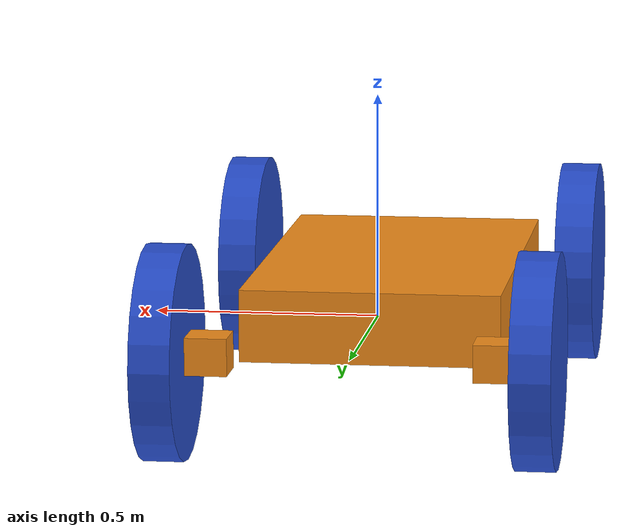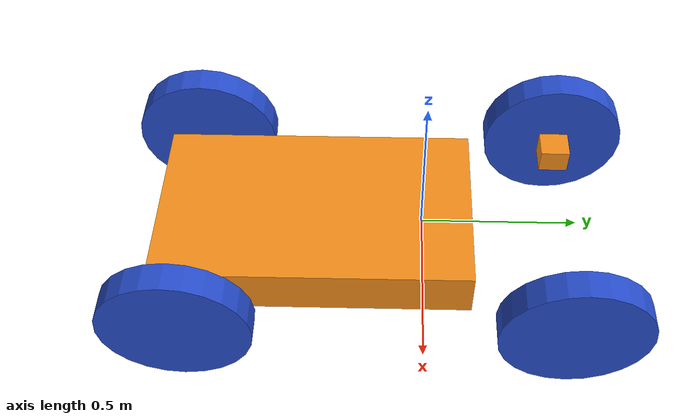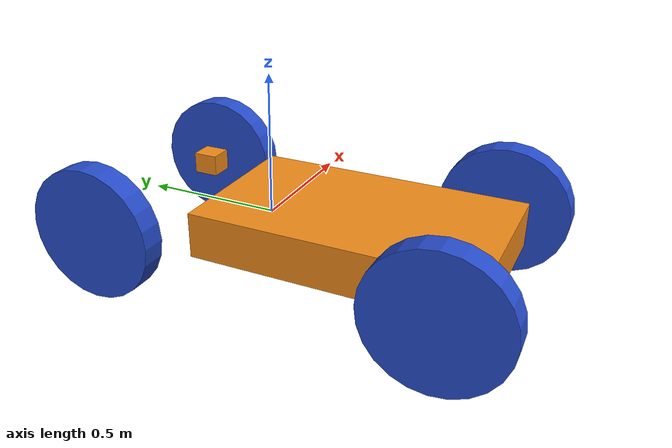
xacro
<?xml version="1.0" ?>

<robot name="mycar" xmlns:xacro="http://www.ros.org/wiki/xacro" >

  <!-- colors/materials -->
  <material name="black">
    <color rgba="0.0 0.0 0.0 1.0" />
  </material>
  <material name="blue">
    <color rgba="0.203125 0.23828125 0.28515625 1.0" />
  </material>
  <material name="green">
    <color rgba="0.0 0.8 0.0 1.0" />
  </material>
  <material name="grey">
    <color rgba="0.2 0.2 0.2 1.0" />
  </material>
  <material name="orange">
    <color rgba="1.0 0.423529411765 0.0392156862745 1.0" />
  </material>
  <material name="brown">
    <color rgba="0.870588235294 0.811764705882 0.764705882353 1.0" />
  </material>
  <material name="red">
    <color rgba="0.80078125 0.12890625 0.1328125 1.0" />
  </material>
  <material name="white">
    <color rgba="1.0 1.0 1.0 1.0" />
  </material>

  <gazebo reference="chassis_link">
    <material>Gazebo/Orange</material>
  </gazebo>
  <gazebo reference="left_steer_block_link">
    <material>Gazebo/Orange</material>
  </gazebo>
  <gazebo reference="right_steer_block_link">
    <material>Gazebo/Orange</material>
  </gazebo>
  <gazebo reference="left_rear_wheel_link">
    <material>Gazebo/Blue</material>
  </gazebo>
  <gazebo reference="right_rear_wheel_link">
    <material>Gazebo/Blue</material>
  </gazebo>
  <gazebo reference="right_front_wheel_link">
    <material>Gazebo/Blue</material>
  </gazebo>
  <gazebo reference="left_front_wheel_link">
    <material>Gazebo/Blue</material>
  </gazebo>

  <!-- gazebo plugin -->
  <gazebo>
    <plugin name="gazebo_ros_control" filename="libgazebo_ros_control.so">
      <robotNamespace>/ackermann</robotNamespace>
    </plugin>
  </gazebo>

  <!-- joint controllers -->
  <transmission name="left_rear_wheel_trans">
    <type>transmission_interface/SimpleTransmission</type>
    <actuator name="motor_left" >
      <hardwareInterface>hardware_interface/EffortJointInterface</hardwareInterface>
      <mechanicalReduction>1</mechanicalReduction>
    </actuator>
    <joint name="left_rear_wheel_joint">
      <hardwareInterface>hardware_interface/EffortJointInterface</hardwareInterface>
    </joint>
  </transmission>

  <transmission name="right_rear_wheel_trans">
    <type>transmission_interface/SimpleTransmission</type>
    <actuator name="motor_right" >
      <hardwareInterface>hardware_interface/EffortJointInterface</hardwareInterface>
      <mechanicalReduction>1</mechanicalReduction>
    </actuator>
    <joint name="right_rear_wheel_joint">
      <hardwareInterface>hardware_interface/EffortJointInterface</hardwareInterface>
    </joint>
  </transmission>

  <transmission name="left_steer_block_trans">
    <type>transmission_interface/SimpleTransmission</type>
    <actuator name="left_steer" >
      <hardwareInterface>hardware_interface/EffortJointInterface</hardwareInterface>
      <mechanicalReduction>1</mechanicalReduction>
    </actuator>
    <joint name="left_steer_block_joint">
      <hardwareInterface>hardware_interface/EffortJointInterface</hardwareInterface>
    </joint>
  </transmission>

  <transmission name="right_steer_block_trans">
    <type>transmission_interface/SimpleTransmission</type>
    <actuator name="right_steer" >
      <hardwareInterface>hardware_interface/EffortJointInterface</hardwareInterface>
      <mechanicalReduction>1</mechanicalReduction>
    </actuator>
    <joint name="right_steer_block_joint">
      <hardwareInterface>hardware_interface/EffortJointInterface</hardwareInterface>
    </joint>
  </transmission>

    <!-- links -->
    <link name='chassis_link'>
      <inertial>
        <mass value="0.0945291" />
        <origin rpy="0 0 0" xyz="0 -0.342857 0" />
        <inertia ixx="0.00808473" ixy="0" ixz="0" iyy="0.00288146" iyz="0" izz="0.0105516" />
      </inertial>
      <collision name='chassis_collision'>
        <origin rpy="0 0 0" xyz="0 -0.342857 0" />
        <geometry>
          <box size="0.582641 1 0.162223" />
        </geometry>
      </collision>
      <visual name='chassis_visual'>
        <origin rpy="0 0 0" xyz="0 -0.342857 0" />
        <geometry>
          <box size="0.582641 1 0.162223" />
        </geometry>
      </visual>
    </link>

    <link name='left_rear_wheel_link'>
      <inertial>
        <mass value="0.0196261" />
        <origin rpy="0 1.57079 0" xyz="0 0 0" />
        <inertia ixx="0.00028435" ixy="0" ixz="0" iyy="0.00028435" iyz="0" izz="0.00054297" />
      </inertial>
      <visual name='left_rear_wheel_visual'>
        <origin rpy="0 1.57079 0" xyz="0 0 0" />
        <geometry>
          <cylinder radius="0.235227" length="0.0886945" />
        </geometry>
      </visual>
      <collision name='left_rear_wheel_collision'>
        <origin rpy="0 1.57079 0" xyz="0 0 0" />
        <geometry>
          <cylinder radius="0.235227" length="0.0886945" />
        </geometry>
      </collision>
    </link>

    <link name='right_rear_wheel_link'>
      <inertial>
        <mass value="0.0196261" />
        <origin rpy="0 1.57079 0" xyz="0 0 0" />
        <inertia ixx="0.00028435" ixy="0" ixz="0" iyy="0.00028435" iyz="0" izz="0.00054297" />
      </inertial>
      <visual name='right_rear_wheel_visual'>
        <origin rpy="0 1.57079 0" xyz="0 0 0" />
        <geometry>
          <cylinder radius="0.235227" length="0.0886945" />
        </geometry>
      </visual>
      <collision name='right_rear_wheel_collision'>
        <origin rpy="0 1.57079 0" xyz="0 0 0" />
        <geometry>
          <cylinder radius="0.235227" length="0.0886945" />
        </geometry>
      </collision>
    </link>

    <link name='right_front_wheel_link'>
      <inertial>
        <mass value="0.0196261" />
        <origin rpy="0 1.57079 0" xyz="0 0 0" />
        <inertia ixx="0.00028435" ixy="0" ixz="0" iyy="0.00028435" iyz="0" izz="0.00054297" />
      </inertial>
      <visual name='right_front_wheel_visual'>
        <origin rpy="0 1.57079 0" xyz="0 0 0" />
        <geometry>
          <cylinder radius="0.235227" length="0.0886945" />
        </geometry>
      </visual>
      <collision name='right_front_wheel_collision'>
        <origin rpy="0 1.57079 0" xyz="0 0 0" />
        <geometry>
          <cylinder radius="0.235227" length="0.0886945" />
        </geometry>
      </collision>
    </link>

    <link name='left_front_wheel_link'>
      <inertial>
        <mass value="0.0196261" />
        <origin rpy="0 1.57079 0" xyz="0 0 0" />
        <inertia ixx="0.00028435" ixy="0" ixz="0" iyy="0.00028435" iyz="0" izz="0.00054297" />
      </inertial>
      <visual name='left_front_wheel_visual'>
        <origin rpy="0 1.57079 0" xyz="0 0 0" />
        <geometry>
          <cylinder radius="0.235227" length="0.0886945" />
        </geometry>
      </visual>
      <collision name='left_front_wheel_collision'>
        <origin rpy="0 1.57079 0" xyz="0 0 0" />
        <geometry>
          <cylinder radius="0.235227" length="0.0886945" />
        </geometry>
      </collision>
    </link>

    <link name='left_steer_block_link'>
      <inertial>
        <mass value="0.00073514" />
	<origin rpy="0 0 0" xyz="0 0 0" />
        <inertia ixx="9.9e-07" ixy="0" ixz="0" iyy="9.4e-07" iyz="0" izz="1.1e-06" />
      </inertial>
      <visual name='left_steer_block_visual'>
      	<origin rpy="0 0 0" xyz="0 0 0" />
        <geometry>
          <box size="0.092365 0.096673 0.082207" />
        </geometry>
      </visual>
      <collision name='left_steer_block_collision'>
	<origin rpy="0 0 0" xyz="0 0 0" />
        <geometry>
          <box size="0.092365 0.096673 0.082207" />
        </geometry>
      </collision>
    </link>

    <link name='right_steer_block_link'>
      <inertial>
        <mass value="0.00073514" />
	<origin rpy="0 0 0" xyz="0 0 0" />
        <inertia ixx="9.9e-07" ixy="0" ixz="0" iyy="9.4e-07" iyz="0" izz="1.1e-06" />
      </inertial>
      <visual name='right_steer_block_visual'>
	<origin rpy="0 0 0" xyz="0 0 0" />
        <geometry>
          <box size="0.092365 0.096673 0.082207" />
        </geometry>
      </visual>
      <collision name='right_steer_block_collision'>
	<origin rpy="0 0 0" xyz="0 0 0" />
        <geometry>
          <box size="0.092365 0.096673 0.082207" />
        </geometry>
      </collision>
    </link>

  <!-- joints -->
    <joint name='left_steer_block_joint' type='continuous'>
	<origin rpy="0 0 0" xyz="-0.31 0.457143 0" />
      <parent link="chassis_link" />
      <child link="left_steer_block_link" />
      <axis rpy ="0 0 0" xyz="0 0 1" />
      <limit effort="100" velocity="1000" />
      <joint_properties damping="1.0" friction="1.0" />
    </joint>

    <joint name='right_steer_block_joint' type='continuous'>
	<origin rpy="0 0 0" xyz="0.31 0.457143 0" />
      <parent link="chassis_link" />
      <child link="right_steer_block_link" />
      <axis rpy ="0 0 0" xyz="0 0 1" />
      <limit effort="100" velocity="1000" />
      <joint_properties damping="1.0" friction="1.0" />
    </joint>

    <joint name='left_rear_wheel_joint' type='continuous'>
      <origin rpy="0 0 0" xyz="-0.4 -0.742857 0" />
      <parent link="chassis_link" />
      <child link="left_rear_wheel_link" />
      <axis rpy ="0 0 0" xyz="1 0 0" />
      <limit effort="100" velocity="1000" />
      <joint_properties damping="1.0" friction="1.0" />
    </joint>

    <joint name='right_rear_wheel_joint' type='continuous'>
      <origin rpy="0 0 0" xyz="0.4 -0.742857 0" />
      <parent link="chassis_link" />
      <child link="right_rear_wheel_link" />
      <axis rpy ="0 0 0" xyz="1 0 0" />
      <limit effort="100" velocity="1000" />
      <joint_properties damping="1.0" friction="1.0" />
    </joint>

    <joint name='left_front_wheel_joint' type='continuous'>
      <origin rpy="0 0 0" xyz="-0.09 0 0" />
      <parent link="left_steer_block_link" />
      <child link="left_front_wheel_link" />
      <axis rpy ="0 0 0" xyz="1 0 0" />
      <limit effort="100" velocity="1000" />
      <joint_properties damping="1.0" friction="1.0" />
    </joint>

    <joint name='right_front_wheel_joint' type='continuous'>
      <origin rpy="0 0 0" xyz="0.09 0 0" />
      <parent link="right_steer_block_link" />
      <child link="right_front_wheel_link" />
      <axis rpy ="0 0 0" xyz="1 0 0" />
      <limit effort="100" velocity="1000" />
      <joint_properties damping="1.0" friction="1.0" />
    </joint>

</robot>
